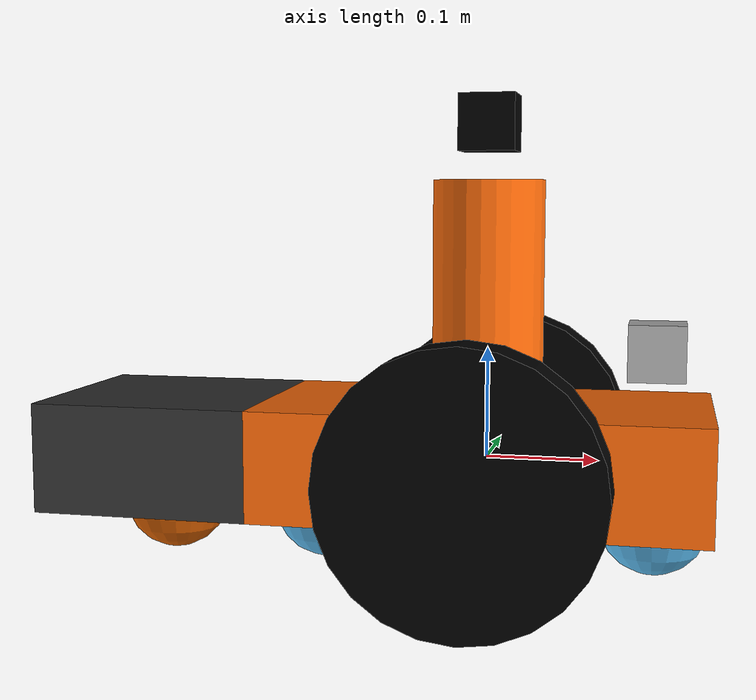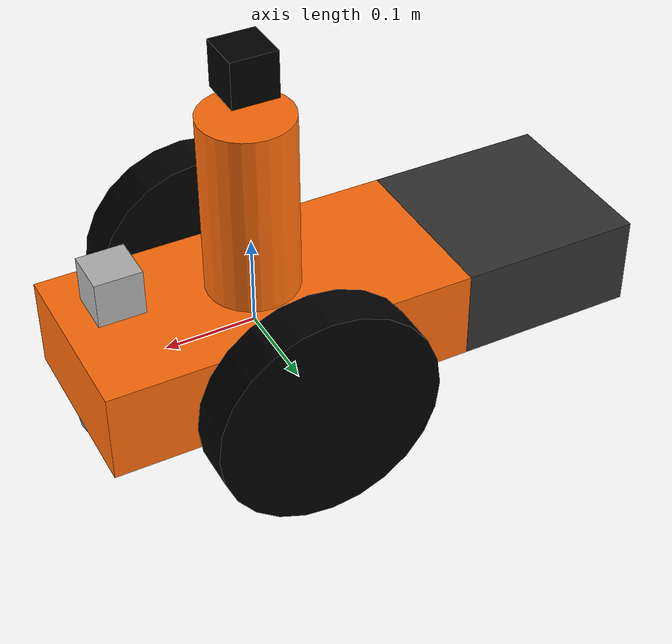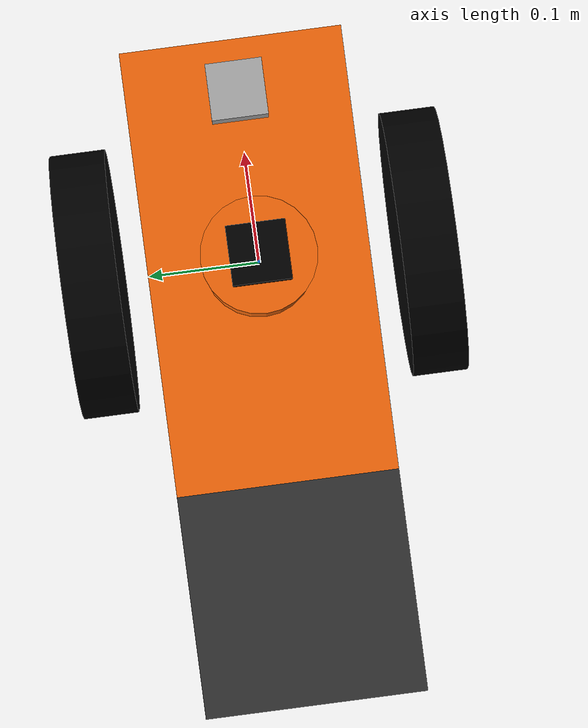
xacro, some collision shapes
<?xml version='1.0'?>

<robot name="udacity_bot" xmlns:xacro="http://www.ros.org/wiki/xacro">
<xacro:include filename="$(find udacity_bot)/urdf/udacity_bot.gazebo" />
<xacro:include filename="$(find udacity_bot)/urdf/materials.xacro" />

  <link name="robot_footprint"></link>

  <joint name="robot_footprint_joint" type="fixed">
    <origin xyz="0 0 0" rpy="0 0 0" />
    <parent link="robot_footprint"/>
    <child link="chassis" />
  </joint>

  <link name='chassis'>
    <pose>0 0 0.1 0 0 0</pose>

    <inertial>
      <mass value="15.0"/>
      <origin xyz="0.0 0 0" rpy=" 0 0 0"/>
      <inertia
          ixx="0.1" ixy="0" ixz="0"
          iyy="0.1" iyz="0"
          izz="0.1"
      />
    </inertial>

    <collision name='collision'>
      <origin xyz="0 0 0" rpy=" 0 0 0"/>
      <geometry>
        <box size=".4 .2 .1"/>
      </geometry>
    </collision>

    <visual name='chassis_visual'>
      <origin xyz="0 0 0" rpy=" 0 0 0"/>
      <geometry>
        <box size=".4 .2 .1"/>
      </geometry>
      <material name="orange"/>
    </visual>

    <collision name='back_caster_collision'>
      <origin xyz="-0.15 0 -0.05" rpy=" 0 0 0"/>
      <geometry>
        <sphere radius="0.0499"/>
      </geometry>
    </collision>

    <visual name='back_caster_visual'>
      <origin xyz="-0.15 0 -0.05" rpy=" 0 0 0"/>
      <geometry>
        <sphere radius="0.05"/>
      </geometry>
    </visual>

    <collision name='front_caster_collision'>
      <origin xyz="0.15 0 -0.05" rpy=" 0 0 0"/>
      <geometry>
        <sphere radius="0.0499"/>
      </geometry>
    </collision>

    <visual name='front_caster_visual'>
      <origin xyz="0.15 0 -0.05" rpy=" 0 0 0"/>
      <geometry>
        <sphere radius="0.05"/>
      </geometry>
    </visual>

  </link>
  <link name="left_wheel">

    <inertial>
      <origin xyz="0 0 0" rpy="0 1.5707 1.5707"/>
      <mass value="5"/>
      <inertia
    ixx="0.1" ixy="0" ixz="0"
    iyy="0.1" iyz="0"
    izz="0.1"/>
    </inertial>

    <visual>
      <origin xyz="0 0 0" rpy="0 1.5707 1.5707"/>
      <geometry>
        <cylinder length="0.05" radius="0.12"/>
      </geometry>
      <material name="black"/>
    </visual>

    <collision>
      <origin xyz="0 0 0" rpy="0 1.5707 1.5707"/>
      <geometry>
        <cylinder length="0.05" radius="0.1"/>
      </geometry>
    </collision>

  </link>

  <link name="right_wheel">

    <inertial>
      <origin xyz="0 0 0" rpy="0 1.5707 1.5707"/>
      <mass value="5"/>
      <inertia
    ixx="0.1" ixy="0" ixz="0"
    iyy="0.1" iyz="0"
    izz="0.1"/>
    </inertial>

    <visual>
      <origin xyz="0 0 0" rpy="0 1.5707 1.5707"/>
      <geometry>
        <cylinder length="0.05" radius="0.12"/>
      </geometry>
      <material name="black"/>
    </visual>

    <collision>
      <origin xyz="0 0 0" rpy="0 1.5707 1.5707"/>
      <geometry>
        <cylinder length="0.05" radius="0.1"/>
      </geometry>
    </collision>

  </link>

  <link name="Platform">

    <inertial>
      <origin xyz="0 0 0" rpy="0 1.5707 1.5707"/>
      <mass value="5"/>
      <inertia
    ixx="0.1" ixy="0" ixz="0"
    iyy="0.1" iyz="0"
    izz="0.1"/>
    </inertial>

    <visual>
      <origin xyz="0 0 0" rpy="0 0 0"/>
      <geometry>
        <cylinder length="0.3" radius="0.05"/>
      </geometry>
      <material name="orange"/>
    </visual>

    <collision>
      <origin xyz="0 0 0" rpy="0 1.5707 1.5707"/>
      <geometry>
        <cylinder length="0.2" radius="0.12"/>
      </geometry>
    </collision>

  </link>

  <link name="Cargo">

    <inertial>
      <origin xyz="0 0 0" rpy="0 0 0"/>
      <mass value="2"/>
      <inertia
    ixx="0.1" ixy="0" ixz="0"
    iyy="0.1" iyz="0"
    izz="0.1"/>
    </inertial>

    <visual>
      <origin xyz="0 0 0" rpy="0 0 0"/>
      <geometry>
        <box size=".2 .2 .1"/>
      </geometry>
      <material name="grey"/>
    </visual>

    <collision name='back_caster_collision'>
      <origin xyz=" 0 0 -0.05" rpy=" 0 0 0"/>
      <geometry>
        <sphere radius="0.0499"/>
      </geometry>
    </collision>

    <visual name='back_caster_visual'>
      <origin xyz=" 0 0 -0.05" rpy=" 0 0 0"/>
      <geometry>
        <sphere radius="0.05"/>
      </geometry>
    </visual>

    <collision>
      <origin xyz="0 0 0" rpy="0 1.5707 1.5707"/>
      <geometry>
        <box size=".2 .2 .1"/>
      </geometry>
    </collision>

  </link>

  <link name="camera">

    <inertial>
      <origin xyz="0 0 0" rpy="0 0 0"/>
      <mass value="0.1"/>
      <inertia
    ixx="1e-6" ixy="0" ixz="0"
    iyy="1e-6" iyz="0"
    izz="1e-6"/>
    </inertial>

    <visual>
      <origin xyz="0 0 0" rpy="0 0 0"/>
      <geometry>
        <box size="0.05 0.05 0.05"/>
      </geometry>
      <material name="black"/>
    </visual>

    <collision>
      <origin xyz="0 0 0" rpy="0 0 0"/>
      <geometry>
        <box size="0.05 0.05 0.05"/>
      </geometry>
    </collision>

   </link>

   <link name="hokuyo">

    <inertial>
      <origin xyz="0 0 0" rpy="0 0 0"/>
      <mass value="0.1"/>
      <inertia
    ixx="1e-6" ixy="0" ixz="0"
    iyy="1e-6" iyz="0"
    izz="1e-6"/>
    </inertial>

    <visual>
      <origin xyz="0 0 0" rpy="0 0 0"/>
      <geometry>
        <mesh filename="package://udacity_bot/meshes/hokuyo.dae"/>
      </geometry>
    </visual>

    <collision>
      <origin xyz="0 0 0" rpy="0 0 0"/>
      <geometry>
        <box size="0.05 0.05 0.05"/>
      </geometry>
    </collision>

   </link>

   <joint type="fixed" name="camera_joint">
     <origin xyz="0 0 0.2" rpy="0 0 0"/>
     <child link="camera"/>
     <parent link="Platform"/>
     <axis xyz="0 0 0" rpy="0 0 0"/>
     <limit effort="10000" velocity="1000"/>
     <joint_properties damping="1.0" friction="1.0"/>
   </joint>

   <joint type="fixed" name="hokuyo_joint">
     <origin xyz="0.15 0 0.1" rpy="0 0 0"/>
     <child link="hokuyo"/>
     <parent link="chassis"/>
     <axis xyz="0 0 0" rpy="0 0 0"/>
     <limit effort="10000" velocity="1000"/>
     <joint_properties damping="1.0" friction="1.0"/>
   </joint>

   <joint type="continuous" name="left_wheel_hinge">
     <origin xyz="0 0.15 0" rpy="0 0 0"/>
     <child link="left_wheel"/>
     <parent link="chassis"/>
     <axis xyz="0 1 0" rpy="0 0 0"/>
     <limit effort="10000" velocity="1000"/>
     <joint_properties damping="1.0" friction="1.0"/>
   </joint>

   <joint type="continuous" name="right_wheel_hinge">
     <origin xyz="0 -0.15 0" rpy="0 0 0"/>
     <child link="right_wheel"/>
     <parent link="chassis"/>
     <axis xyz="0 1 0" rpy="0 0 0"/>
     <limit effort="10000" velocity="1000"/>
     <joint_properties damping="1.0" friction="1.0"/>
   </joint>

   <joint type="fixed" name="platform_joint">
     <origin xyz="0 0 0.1" rpy="0 0 0"/>
     <child link="Platform"/>
     <parent link="chassis"/>
     <axis xyz="0 1 0" rpy="0 0 0"/>
     <limit effort="10000" velocity="1000"/>
     <joint_properties damping="1.0" friction="1.0"/>
   </joint>

   <joint type="fixed" name="cargo_joint">
     <origin xyz="-0.3 0 0" rpy="0 0 0"/>
     <child link="Cargo"/>
     <parent link="chassis"/>
     <axis xyz="0 1 0" rpy="0 0 0"/>
     <limit effort="10000" velocity="1000"/>
     <joint_properties damping="1.0" friction="1.0"/>
   </joint>

</robot>

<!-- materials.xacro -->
<robot>

  <material name="black">
    <color rgba="0.0 0.0 0.0 1.0"/>
  </material>

  <material name="grey">
    <color rgba="0.2 0.2 0.2 1.0"/>
  </material>

  <material name="orange">
    <color rgba="${255/255} ${108/255} ${10/255} 1.0"/>
  </material>

</robot>
